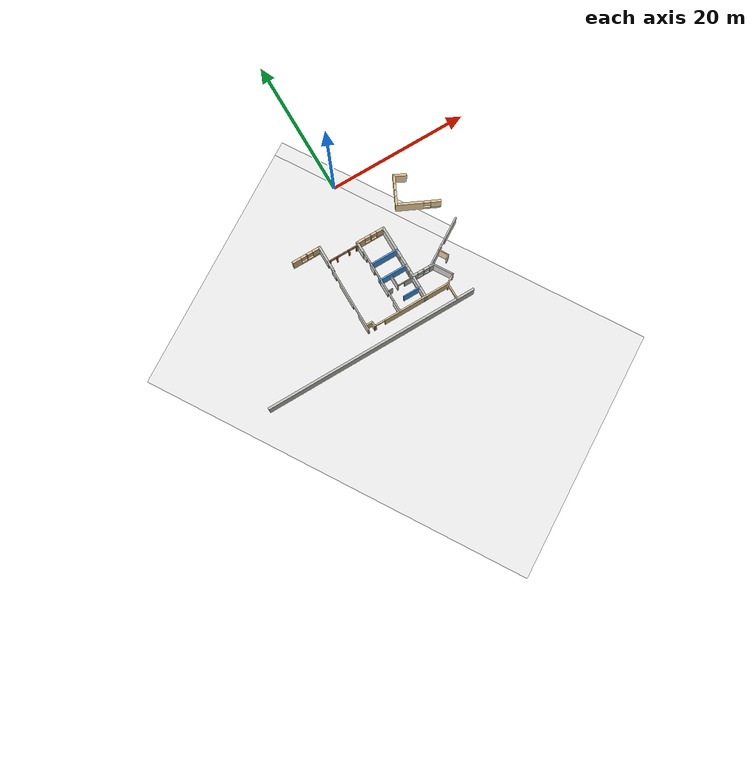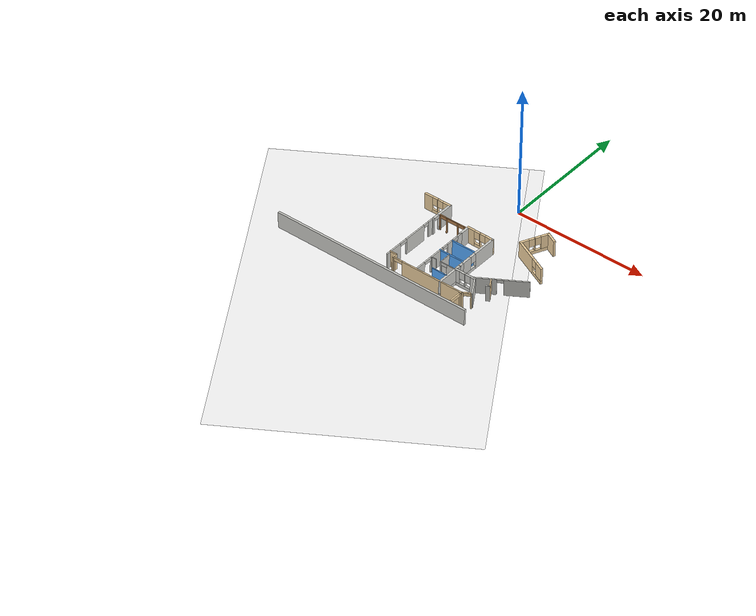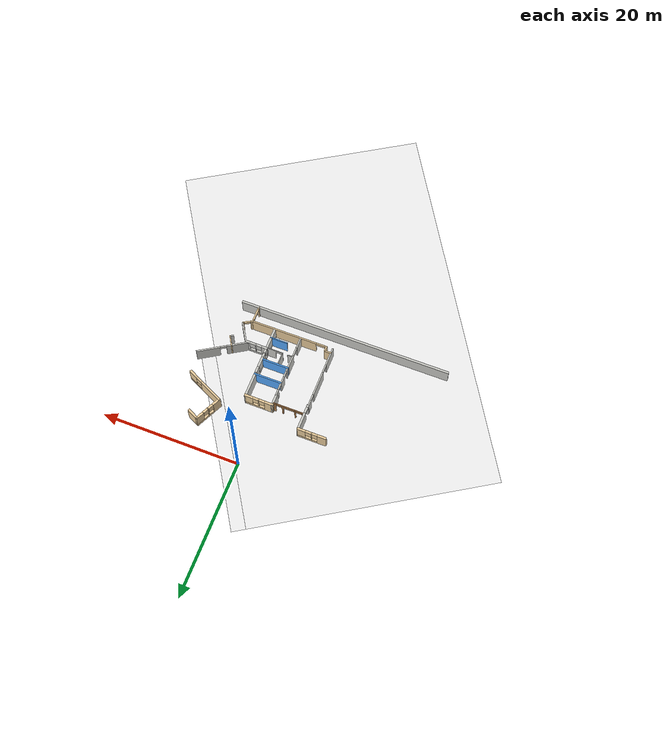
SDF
<sdf version="1.6">
 <model name="floor_with_ground">
  <pose>1.8499 0.23643 0 0 -0 0</pose>
  <link name="Wall_221">
   <pose>-9.9509 -7.06743 0 0 -0 0</pose>
   <visual name="Wall_221_Visual_0">
    <pose>-1.45475 0 1.25 0 -0 0</pose>
    <geometry><box><size>1.3005 0.32 2.5</size></box></geometry>
    <material>
     <script><uri>file://media/materials/scripts/gazebo.material</uri><name>Gazebo/Grey</name></script>
     <ambient>0.921569 0.807843 0.615686 1</ambient>
    </material>
   </visual>
   <collision name="Wall_221_Collision_0">
    <geometry><box><size>1.3005 0.32 2.5</size></box></geometry>
    <pose>-1.45475 0 1.25 0 -0 0</pose>
   </collision>
   <visual name="Wall_221_Visual_1">
    <pose>0.650249 0 0.25 0 -0 0</pose>
    <geometry><box><size>2.9095 0.32 0.5</size></box></geometry>
    <material>
     <script><uri>file://media/materials/scripts/gazebo.material</uri><name>Gazebo/Grey</name></script>
     <ambient>0.921569 0.807843 0.615686 1</ambient>
    </material>
   </visual>
   <collision name="Wall_221_Collision_1">
    <geometry><box><size>2.9095 0.32 0.5</size></box></geometry>
    <pose>0.650249 0 0.25 0 -0 0</pose>
   </collision>
   <visual name="Wall_221_Visual_2">
    <pose>0.048053 0 1.5 0 -0 0</pose>
    <geometry><box><size>0.105111 0.32 2</size></box></geometry>
    <material>
     <script><uri>file://media/materials/scripts/gazebo.material</uri><name>Gazebo/Grey</name></script>
     <ambient>0.921569 0.807843 0.615686 1</ambient>
    </material>
   </visual>
   <collision name="Wall_221_Collision_2">
    <geometry><box><size>0.105111 0.32 2</size></box></geometry>
    <pose>0.048053 0 1.5 0 -0 0</pose>
   </collision>
   <visual name="Wall_221_Visual_3">
    <pose>1.5028 0 1.5 0 -0 0</pose>
    <geometry><box><size>1.20439 0.32 2</size></box></geometry>
    <material>
     <script><uri>file://media/materials/scripts/gazebo.material</uri><name>Gazebo/Grey</name></script>
     <ambient>0.921569 0.807843 0.615686 1</ambient>
    </material>
   </visual>
   <collision name="Wall_221_Collision_3">
    <geometry><box><size>1.20439 0.32 2</size></box></geometry>
    <pose>1.5028 0 1.5 0 -0 0</pose>
   </collision>
   <visual name="Wall_221_Visual_4">
    <pose>-0.404503 0 1.9 0 -0 0</pose>
    <geometry><box><size>0.8 0.32 1.2</size></box></geometry>
    <material>
     <script><uri>file://media/materials/scripts/gazebo.material</uri><name>Gazebo/Grey</name></script>
     <ambient>0.921569 0.807843 0.615686 1</ambient>
    </material>
   </visual>
   <collision name="Wall_221_Collision_4">
    <geometry><box><size>0.8 0.32 1.2</size></box></geometry>
    <pose>-0.404503 0 1.9 0 -0 0</pose>
   </collision>
   <visual name="Wall_221_Visual_5">
    <pose>0.500608 0 1.9 0 -0 0</pose>
    <geometry><box><size>0.8 0.32 1.2</size></box></geometry>
    <material>
     <script><uri>file://media/materials/scripts/gazebo.material</uri><name>Gazebo/Grey</name></script>
     <ambient>0.921569 0.807843 0.615686 1</ambient>
    </material>
   </visual>
   <collision name="Wall_221_Collision_5">
    <geometry><box><size>0.8 0.32 1.2</size></box></geometry>
    <pose>0.500608 0 1.9 0 -0 0</pose>
   </collision>
  </link>
  <link name="Wall_233">
   <pose>-5.71156 -9.34954 0 0 -0 0</pose>
   <visual name="Wall_233_Visual_0">
    <pose>-2.14237 0 1.25 0 -0 0</pose>
    <geometry><box><size>0.465256 0.15 2.5</size></box></geometry>
    <material>
     <script><uri>file://media/materials/scripts/gazebo.material</uri><name>Gazebo/Wood</name></script>
     <ambient>1 1 1 1</ambient>
    </material>
   </visual>
   <collision name="Wall_233_Collision_0">
    <geometry><box><size>0.465256 0.15 2.5</size></box></geometry>
    <pose>-2.14237 0 1.25 0 -0 0</pose>
   </collision>
   <visual name="Wall_233_Visual_1">
    <pose>-0.914158 0 1.25 0 -0 0</pose>
    <geometry><box><size>0.191172 0.15 2.5</size></box></geometry>
    <material>
     <script><uri>file://media/materials/scripts/gazebo.material</uri><name>Gazebo/Wood</name></script>
     <ambient>1 1 1 1</ambient>
    </material>
   </visual>
   <collision name="Wall_233_Collision_1">
    <geometry><box><size>0.191172 0.15 2.5</size></box></geometry>
    <pose>-0.914158 0 1.25 0 -0 0</pose>
   </collision>
   <visual name="Wall_233_Visual_2">
    <pose>0.897669 0 1.25 0 -0 0</pose>
    <geometry><box><size>0.225333 0.15 2.5</size></box></geometry>
    <material>
     <script><uri>file://media/materials/scripts/gazebo.material</uri><name>Gazebo/Wood</name></script>
     <ambient>1 1 1 1</ambient>
    </material>
   </visual>
   <collision name="Wall_233_Collision_2">
    <geometry><box><size>0.225333 0.15 2.5</size></box></geometry>
    <pose>0.897669 0 1.25 0 -0 0</pose>
   </collision>
   <visual name="Wall_233_Visual_3">
    <pose>2.14267 0 1.25 0 -0 0</pose>
    <geometry><box><size>0.464664 0.15 2.5</size></box></geometry>
    <material>
     <script><uri>file://media/materials/scripts/gazebo.material</uri><name>Gazebo/Wood</name></script>
     <ambient>1 1 1 1</ambient>
    </material>
   </visual>
   <collision name="Wall_233_Collision_3">
    <geometry><box><size>0.464664 0.15 2.5</size></box></geometry>
    <pose>2.14267 0 1.25 0 -0 0</pose>
   </collision>
   <visual name="Wall_233_Visual_4">
    <pose>-1.45974 0 2.25 0 -0 0</pose>
    <geometry><box><size>0.9 0.15 0.5</size></box></geometry>
    <material>
     <script><uri>file://media/materials/scripts/gazebo.material</uri><name>Gazebo/Wood</name></script>
     <ambient>1 1 1 1</ambient>
    </material>
   </visual>
   <collision name="Wall_233_Collision_4">
    <geometry><box><size>0.9 0.15 0.5</size></box></geometry>
    <pose>-1.45974 0 2.25 0 -0 0</pose>
   </collision>
   <visual name="Wall_233_Visual_5">
    <pose>-0.016785 0 2.25 0 -0 0</pose>
    <geometry><box><size>1.60357 0.15 0.5</size></box></geometry>
    <material>
     <script><uri>file://media/materials/scripts/gazebo.material</uri><name>Gazebo/Wood</name></script>
     <ambient>1 1 1 1</ambient>
    </material>
   </visual>
   <collision name="Wall_233_Collision_5">
    <geometry><box><size>1.60357 0.15 0.5</size></box></geometry>
    <pose>-0.016785 0 2.25 0 -0 0</pose>
   </collision>
   <visual name="Wall_233_Visual_6">
    <pose>1.46034 0 2.25 0 -0 0</pose>
    <geometry><box><size>0.9 0.15 0.5</size></box></geometry>
    <material>
     <script><uri>file://media/materials/scripts/gazebo.material</uri><name>Gazebo/Wood</name></script>
     <ambient>1 1 1 1</ambient>
    </material>
   </visual>
   <collision name="Wall_233_Collision_6">
    <geometry><box><size>0.9 0.15 0.5</size></box></geometry>
    <pose>1.46034 0 2.25 0 -0 0</pose>
   </collision>
  </link>
  <link name="Wall_237">
   <pose>-1.5754 -19.8154 0 0 -0 0.001807</pose>
   <visual name="Wall_237_Visual_0">
    <pose>-5.47494 0 1.25 0 -0 0</pose>
    <geometry><box><size>0.319129 0.2 2.5</size></box></geometry>
    <material>
     <script><uri>file://media/materials/scripts/gazebo.material</uri><name>Gazebo/Grey</name></script>
     <ambient>0.921569 0.807843 0.615686 1</ambient>
    </material>
   </visual>
   <collision name="Wall_237_Collision_0">
    <geometry><box><size>0.319129 0.2 2.5</size></box></geometry>
    <pose>-5.47494 0 1.25 0 -0 0</pose>
   </collision>
   <visual name="Wall_237_Visual_1">
    <pose>0.810304 0 1.25 0 -0 0</pose>
    <geometry><box><size>9.64841 0.2 2.5</size></box></geometry>
    <material>
     <script><uri>file://media/materials/scripts/gazebo.material</uri><name>Gazebo/Grey</name></script>
     <ambient>0.921569 0.807843 0.615686 1</ambient>
    </material>
   </visual>
   <collision name="Wall_237_Collision_1">
    <geometry><box><size>9.64841 0.2 2.5</size></box></geometry>
    <pose>0.810304 0 1.25 0 -0 0</pose>
   </collision>
   <visual name="Wall_237_Visual_2">
    <pose>-4.66464 0 2.25 0 -0 0</pose>
    <geometry><box><size>1.30148 0.2 0.5</size></box></geometry>
    <material>
     <script><uri>file://media/materials/scripts/gazebo.material</uri><name>Gazebo/Grey</name></script>
     <ambient>0.921569 0.807843 0.615686 1</ambient>
    </material>
   </visual>
   <collision name="Wall_237_Collision_2">
    <geometry><box><size>1.30148 0.2 0.5</size></box></geometry>
    <pose>-4.66464 0 2.25 0 -0 0</pose>
   </collision>
  </link>
  <link name="Wall_242">
   <pose>-1.37522 -9.05787 0 0 0 -0.005654</pose>
   <visual name="Wall_242_Visual_0">
    <pose>-1.49229 0 1.25 0 -0 0</pose>
    <geometry><box><size>1.26743 0.32 2.5</size></box></geometry>
    <material>
     <script><uri>file://media/materials/scripts/gazebo.material</uri><name>Gazebo/Grey</name></script>
     <ambient>0.921569 0.807843 0.615686 1</ambient>
    </material>
   </visual>
   <collision name="Wall_242_Collision_0">
    <geometry><box><size>1.26743 0.32 2.5</size></box></geometry>
    <pose>-1.49229 0 1.25 0 -0 0</pose>
   </collision>
   <visual name="Wall_242_Visual_1">
    <pose>0.633717 0 0.25 0 -0 0</pose>
    <geometry><box><size>2.98457 0.32 0.5</size></box></geometry>
    <material>
     <script><uri>file://media/materials/scripts/gazebo.material</uri><name>Gazebo/Grey</name></script>
     <ambient>0.921569 0.807843 0.615686 1</ambient>
    </material>
   </visual>
   <collision name="Wall_242_Collision_1">
    <geometry><box><size>2.98457 0.32 0.5</size></box></geometry>
    <pose>0.633717 0 0.25 0 -0 0</pose>
   </collision>
   <visual name="Wall_242_Visual_2">
    <pose>0.003637 0 1.5 0 -0 0</pose>
    <geometry><box><size>0.124413 0.32 2</size></box></geometry>
    <material>
     <script><uri>file://media/materials/scripts/gazebo.material</uri><name>Gazebo/Grey</name></script>
     <ambient>0.921569 0.807843 0.615686 1</ambient>
    </material>
   </visual>
   <collision name="Wall_242_Collision_2">
    <geometry><box><size>0.124413 0.32 2</size></box></geometry>
    <pose>0.003637 0 1.5 0 -0 0</pose>
   </collision>
   <visual name="Wall_242_Visual_3">
    <pose>1.49592 0 1.5 0 -0 0</pose>
    <geometry><box><size>1.26016 0.32 2</size></box></geometry>
    <material>
     <script><uri>file://media/materials/scripts/gazebo.material</uri><name>Gazebo/Grey</name></script>
     <ambient>0.921569 0.807843 0.615686 1</ambient>
    </material>
   </visual>
   <collision name="Wall_242_Collision_3">
    <geometry><box><size>1.26016 0.32 2</size></box></geometry>
    <pose>1.49592 0 1.5 0 -0 0</pose>
   </collision>
   <visual name="Wall_242_Visual_4">
    <pose>-0.45857 0 1.9 0 -0 0</pose>
    <geometry><box><size>0.8 0.32 1.2</size></box></geometry>
    <material>
     <script><uri>file://media/materials/scripts/gazebo.material</uri><name>Gazebo/Grey</name></script>
     <ambient>0.921569 0.807843 0.615686 1</ambient>
    </material>
   </visual>
   <collision name="Wall_242_Collision_4">
    <geometry><box><size>0.8 0.32 1.2</size></box></geometry>
    <pose>-0.45857 0 1.9 0 -0 0</pose>
   </collision>
   <visual name="Wall_242_Visual_5">
    <pose>0.465844 0 1.9 0 -0 0</pose>
    <geometry><box><size>0.8 0.32 1.2</size></box></geometry>
    <material>
     <script><uri>file://media/materials/scripts/gazebo.material</uri><name>Gazebo/Grey</name></script>
     <ambient>0.921569 0.807843 0.615686 1</ambient>
    </material>
   </visual>
   <collision name="Wall_242_Collision_5">
    <geometry><box><size>0.8 0.32 1.2</size></box></geometry>
    <pose>0.465844 0 1.9 0 -0 0</pose>
   </collision>
  </link>
  <link name="Wall_243">
   <pose>0.58845 -14.4121 0 0 0 -1.57123</pose>
   <visual name="Wall_243_Visual_0">
    <pose>-3.60304 0 1.25 0 -0 0</pose>
    <geometry><box><size>3.80007 0.32 2.5</size></box></geometry>
    <material>
     <script><uri>file://media/materials/scripts/gazebo.material</uri><name>Gazebo/CeilingTiled</name></script>
     <ambient>0.921569 0.807843 0.615686 1</ambient>
    </material>
   </visual>
   <collision name="Wall_243_Collision_0">
    <geometry><box><size>3.80007 0.32 2.5</size></box></geometry>
    <pose>-3.60304 0 1.25 0 -0 0</pose>
   </collision>
   <visual name="Wall_243_Visual_1">
    <pose>1.90003 0 0.25 0 -0 0</pose>
    <geometry><box><size>7.20609 0.32 0.5</size></box></geometry>
    <material>
     <script><uri>file://media/materials/scripts/gazebo.material</uri><name>Gazebo/CeilingTiled</name></script>
     <ambient>0.921569 0.807843 0.615686 1</ambient>
    </material>
   </visual>
   <collision name="Wall_243_Collision_1">
    <geometry><box><size>7.20609 0.32 0.5</size></box></geometry>
    <pose>1.90003 0 0.25 0 -0 0</pose>
   </collision>
   <visual name="Wall_243_Visual_2">
    <pose>0.026227 0 1.5 0 -0 0</pose>
    <geometry><box><size>1.53665 0.32 2</size></box></geometry>
    <material>
     <script><uri>file://media/materials/scripts/gazebo.material</uri><name>Gazebo/CeilingTiled</name></script>
     <ambient>0.921569 0.807843 0.615686 1</ambient>
    </material>
   </visual>
   <collision name="Wall_243_Collision_2">
    <geometry><box><size>1.53665 0.32 2</size></box></geometry>
    <pose>0.026227 0 1.5 0 -0 0</pose>
   </collision>
   <visual name="Wall_243_Visual_3">
    <pose>1.44502 0 1.5 0 -0 0</pose>
    <geometry><box><size>0.100925 0.32 2</size></box></geometry>
    <material>
     <script><uri>file://media/materials/scripts/gazebo.material</uri><name>Gazebo/CeilingTiled</name></script>
     <ambient>0.921569 0.807843 0.615686 1</ambient>
    </material>
   </visual>
   <collision name="Wall_243_Collision_3">
    <geometry><box><size>0.100925 0.32 2</size></box></geometry>
    <pose>1.44502 0 1.5 0 -0 0</pose>
   </collision>
   <visual name="Wall_243_Visual_4">
    <pose>3.79928 0 1.5 0 -0 0</pose>
    <geometry><box><size>3.4076 0.32 2</size></box></geometry>
    <material>
     <script><uri>file://media/materials/scripts/gazebo.material</uri><name>Gazebo/CeilingTiled</name></script>
     <ambient>0.921569 0.807843 0.615686 1</ambient>
    </material>
   </visual>
   <collision name="Wall_243_Collision_4">
    <geometry><box><size>3.4076 0.32 2</size></box></geometry>
    <pose>3.79928 0 1.5 0 -0 0</pose>
   </collision>
   <visual name="Wall_243_Visual_5">
    <pose>-1.22255 0 1.9 0 -0 0</pose>
    <geometry><box><size>0.960909 0.32 1.2</size></box></geometry>
    <material>
     <script><uri>file://media/materials/scripts/gazebo.material</uri><name>Gazebo/CeilingTiled</name></script>
     <ambient>0.921569 0.807843 0.615686 1</ambient>
    </material>
   </visual>
   <collision name="Wall_243_Collision_5">
    <geometry><box><size>0.960909 0.32 1.2</size></box></geometry>
    <pose>-1.22255 0 1.9 0 -0 0</pose>
   </collision>
   <visual name="Wall_243_Visual_6">
    <pose>1.09455 0 1.9 0 -0 0</pose>
    <geometry><box><size>0.6 0.32 1.2</size></box></geometry>
    <material>
     <script><uri>file://media/materials/scripts/gazebo.material</uri><name>Gazebo/CeilingTiled</name></script>
     <ambient>0.921569 0.807843 0.615686 1</ambient>
    </material>
   </visual>
   <collision name="Wall_243_Collision_6">
    <geometry><box><size>0.6 0.32 1.2</size></box></geometry>
    <pose>1.09455 0 1.9 0 -0 0</pose>
   </collision>
   <visual name="Wall_243_Visual_7">
    <pose>1.79548 0 1.9 0 -0 0</pose>
    <geometry><box><size>0.6 0.32 1.2</size></box></geometry>
    <material>
     <script><uri>file://media/materials/scripts/gazebo.material</uri><name>Gazebo/CeilingTiled</name></script>
     <ambient>0.921569 0.807843 0.615686 1</ambient>
    </material>
   </visual>
   <collision name="Wall_243_Collision_7">
    <geometry><box><size>0.6 0.32 1.2</size></box></geometry>
    <pose>1.79548 0 1.9 0 -0 0</pose>
   </collision>
  </link>
  <link name="Wall_245">
   <pose>4.5296 -19.4789 0 0 -0 0.519807</pose>
   <visual name="Wall_245_Visual_0">
    <pose>-0.544743 0 1.25 0 -0 0</pose>
    <geometry><box><size>0.425159 0.2 2.5</size></box></geometry>
    <material>
     <script><uri>file://media/materials/scripts/gazebo.material</uri><name>Gazebo/Grey</name></script>
     <ambient>0.921569 0.807843 0.615686 1</ambient>
    </material>
   </visual>
   <collision name="Wall_245_Collision_0">
    <geometry><box><size>0.425159 0.2 2.5</size></box></geometry>
    <pose>-0.544743 0 1.25 0 -0 0</pose>
   </collision>
   <visual name="Wall_245_Visual_1">
    <pose>0.662579 0 1.25 0 -0 0</pose>
    <geometry><box><size>0.189486 0.2 2.5</size></box></geometry>
    <material>
     <script><uri>file://media/materials/scripts/gazebo.material</uri><name>Gazebo/Grey</name></script>
     <ambient>0.921569 0.807843 0.615686 1</ambient>
    </material>
   </visual>
   <collision name="Wall_245_Collision_1">
    <geometry><box><size>0.189486 0.2 2.5</size></box></geometry>
    <pose>0.662579 0 1.25 0 -0 0</pose>
   </collision>
   <visual name="Wall_245_Visual_2">
    <pose>0.117836 0 2.25 0 -0 0</pose>
    <geometry><box><size>0.9 0.2 0.5</size></box></geometry>
    <material>
     <script><uri>file://media/materials/scripts/gazebo.material</uri><name>Gazebo/Grey</name></script>
     <ambient>0.921569 0.807843 0.615686 1</ambient>
    </material>
   </visual>
   <collision name="Wall_245_Collision_2">
    <geometry><box><size>0.9 0.2 0.5</size></box></geometry>
    <pose>0.117836 0 2.25 0 -0 0</pose>
   </collision>
  </link>
  <link name="Wall_247">
   <pose>2.05987 -16.634 0 0 -0 3.13729</pose>
   <visual name="Wall_247_Visual_0">
    <pose>-1.2965 0 1.25 0 -0 0</pose>
    <geometry><box><size>0.63484 0.32 2.5</size></box></geometry>
    <material>
     <script><uri>file://media/materials/scripts/gazebo.material</uri><name>Gazebo/CeilingTiled</name></script>
     <ambient>0.921569 0.807843 0.615686 1</ambient>
    </material>
   </visual>
   <collision name="Wall_247_Collision_0">
    <geometry><box><size>0.63484 0.32 2.5</size></box></geometry>
    <pose>-1.2965 0 1.25 0 -0 0</pose>
   </collision>
   <visual name="Wall_247_Visual_1">
    <pose>0.31742 0 0.25 0 -0 0</pose>
    <geometry><box><size>2.593 0.32 0.5</size></box></geometry>
    <material>
     <script><uri>file://media/materials/scripts/gazebo.material</uri><name>Gazebo/CeilingTiled</name></script>
     <ambient>0.921569 0.807843 0.615686 1</ambient>
    </material>
   </visual>
   <collision name="Wall_247_Collision_1">
    <geometry><box><size>2.593 0.32 0.5</size></box></geometry>
    <pose>0.31742 0 0.25 0 -0 0</pose>
   </collision>
   <visual name="Wall_247_Visual_2">
    <pose>-0.115351 0 1.5 0 -0 0</pose>
    <geometry><box><size>0.127464 0.32 2</size></box></geometry>
    <material>
     <script><uri>file://media/materials/scripts/gazebo.material</uri><name>Gazebo/CeilingTiled</name></script>
     <ambient>0.921569 0.807843 0.615686 1</ambient>
    </material>
   </visual>
   <collision name="Wall_247_Collision_2">
    <geometry><box><size>0.127464 0.32 2</size></box></geometry>
    <pose>-0.115351 0 1.5 0 -0 0</pose>
   </collision>
   <visual name="Wall_247_Visual_3">
    <pose>1.18115 0 1.5 0 -0 0</pose>
    <geometry><box><size>0.865542 0.32 2</size></box></geometry>
    <material>
     <script><uri>file://media/materials/scripts/gazebo.material</uri><name>Gazebo/CeilingTiled</name></script>
     <ambient>0.921569 0.807843 0.615686 1</ambient>
    </material>
   </visual>
   <collision name="Wall_247_Collision_3">
    <geometry><box><size>0.865542 0.32 2</size></box></geometry>
    <pose>1.18115 0 1.5 0 -0 0</pose>
   </collision>
   <visual name="Wall_247_Visual_4">
    <pose>-0.579083 0 1.9 0 -0 0</pose>
    <geometry><box><size>0.8 0.32 1.2</size></box></geometry>
    <material>
     <script><uri>file://media/materials/scripts/gazebo.material</uri><name>Gazebo/CeilingTiled</name></script>
     <ambient>0.921569 0.807843 0.615686 1</ambient>
    </material>
   </visual>
   <collision name="Wall_247_Collision_4">
    <geometry><box><size>0.8 0.32 1.2</size></box></geometry>
    <pose>-0.579083 0 1.9 0 -0 0</pose>
   </collision>
   <visual name="Wall_247_Visual_5">
    <pose>0.348381 0 1.9 0 -0 0</pose>
    <geometry><box><size>0.8 0.32 1.2</size></box></geometry>
    <material>
     <script><uri>file://media/materials/scripts/gazebo.material</uri><name>Gazebo/CeilingTiled</name></script>
     <ambient>0.921569 0.807843 0.615686 1</ambient>
    </material>
   </visual>
   <collision name="Wall_247_Collision_5">
    <geometry><box><size>0.8 0.32 1.2</size></box></geometry>
    <pose>0.348381 0 1.9 0 -0 0</pose>
   </collision>
  </link>
  <link name="Wall_250">
   <collision name="Wall_250_Collision">
    <geometry><box><size>3.18067 0.2 2.5</size></box></geometry>
    <pose>0 0 1.25 0 -0 0</pose>
   </collision>
   <visual name="Wall_250_Visual">
    <pose>0 0 1.25 0 -0 0</pose>
    <geometry><box><size>3.18067 0.2 2.5</size></box></geometry>
    <material>
     <script><uri>file://media/materials/scripts/gazebo.material</uri><name>Gazebo/CeilingTiled</name></script>
     <ambient>0.921569 0.807843 0.615686 1</ambient>
    </material>
   </visual>
   <pose>4.39594 -17.7988 0 0 -0 2.1233</pose>
  </link>
  <link name="Wall_253">
   <collision name="Wall_253_Collision">
    <geometry><box><size>4.05026 0.2 2.5</size></box></geometry>
    <pose>0 0 1.25 0 -0 0</pose>
   </collision>
   <visual name="Wall_253_Visual">
    <pose>0 0 1.25 0 -0 0</pose>
    <geometry><box><size>4.05026 0.2 2.5</size></box></geometry>
    <material>
     <script><uri>file://media/materials/scripts/gazebo.material</uri><name>Gazebo/Grey</name></script>
     <ambient>0.333333 0.666667 1 1</ambient>
    </material>
   </visual>
   <pose>-1.3729 -14.9244 0 0 -0 3.14159</pose>
  </link>
  <link name="Wall_255">
   <collision name="Wall_255_Collision">
    <geometry><box><size>4.04992 0.2 2.5</size></box></geometry>
    <pose>0 0 1.25 0 -0 0</pose>
   </collision>
   <visual name="Wall_255_Visual">
    <pose>0 0 1.25 0 -0 0</pose>
    <geometry><box><size>4.04992 0.2 2.5</size></box></geometry>
    <material>
     <script><uri>file://media/materials/scripts/gazebo.material</uri><name>Gazebo/Grey</name></script>
     <ambient>0.333333 0.666667 1 1</ambient>
    </material>
   </visual>
   <pose>-1.3129 -12.4904 0 0 -0 3.14159</pose>
  </link>
  <link name="Wall_259">
   <collision name="Wall_259_Collision">
    <geometry><box><size>1.60693 0.15 2.5</size></box></geometry>
    <pose>0 0 1.25 0 -0 0</pose>
   </collision>
   <visual name="Wall_259_Visual">
    <pose>0 0 1.25 0 -0 0</pose>
    <geometry><box><size>1.60693 0.15 2.5</size></box></geometry>
    <material>
     <script><uri>file://media/materials/scripts/gazebo.material</uri><name>Gazebo/Grey</name></script>
     <ambient>0.921569 0.807843 0.615686 1</ambient>
    </material>
   </visual>
   <pose>5.66333 -15.9229 0 0 0 -1.03514</pose>
  </link>
  <link name="Wall_275">
   <pose>-0.589967 -16.7403 0 0 -0 3.14061</pose>
   <visual name="Wall_275_Visual_0">
    <pose>-0.522536 0 1.25 0 -0 0</pose>
    <geometry><box><size>1.42307 0.1 2.5</size></box></geometry>
    <material>
     <script><uri>file://media/materials/scripts/gazebo.material</uri><name>Gazebo/CeilingTiled</name></script>
     <ambient>0.333333 0.666667 1 1</ambient>
    </material>
   </visual>
   <collision name="Wall_275_Collision_0">
    <geometry><box><size>1.42307 0.1 2.5</size></box></geometry>
    <pose>-0.522536 0 1.25 0 -0 0</pose>
   </collision>
   <visual name="Wall_275_Visual_1">
    <pose>1.16153 0 1.25 0 -0 0</pose>
    <geometry><box><size>0.145072 0.1 2.5</size></box></geometry>
    <material>
     <script><uri>file://media/materials/scripts/gazebo.material</uri><name>Gazebo/CeilingTiled</name></script>
     <ambient>0.333333 0.666667 1 1</ambient>
    </material>
   </visual>
   <collision name="Wall_275_Collision_1">
    <geometry><box><size>0.145072 0.1 2.5</size></box></geometry>
    <pose>1.16153 0 1.25 0 -0 0</pose>
   </collision>
   <visual name="Wall_275_Visual_2">
    <pose>0.638998 0 2.25 0 -0 0</pose>
    <geometry><box><size>0.9 0.1 0.5</size></box></geometry>
    <material>
     <script><uri>file://media/materials/scripts/gazebo.material</uri><name>Gazebo/CeilingTiled</name></script>
     <ambient>0.333333 0.666667 1 1</ambient>
    </material>
   </visual>
   <collision name="Wall_275_Collision_2">
    <geometry><box><size>0.9 0.1 0.5</size></box></geometry>
    <pose>0.638998 0 2.25 0 -0 0</pose>
   </collision>
  </link>
  <link name="Wall_282">
   <pose>6.42021 -14.6366 0 0 -0 0.557938</pose>
   <visual name="Wall_282_Visual_0">
    <pose>-2.13123 0 1.25 0 -0 0</pose>
    <geometry><box><size>3.09566 0.2 2.5</size></box></geometry>
    <material>
     <script><uri>file://media/materials/scripts/gazebo.material</uri><name>Gazebo/CeilingTiled</name></script>
     <ambient>0.921569 0.807843 0.615686 1</ambient>
    </material>
   </visual>
   <collision name="Wall_282_Collision_0">
    <geometry><box><size>3.09566 0.2 2.5</size></box></geometry>
    <pose>-2.13123 0 1.25 0 -0 0</pose>
   </collision>
   <visual name="Wall_282_Visual_1">
    <pose>1.99783 0 1.25 0 -0 0</pose>
    <geometry><box><size>3.36246 0.2 2.5</size></box></geometry>
    <material>
     <script><uri>file://media/materials/scripts/gazebo.material</uri><name>Gazebo/CeilingTiled</name></script>
     <ambient>0.921569 0.807843 0.615686 1</ambient>
    </material>
   </visual>
   <collision name="Wall_282_Collision_1">
    <geometry><box><size>3.36246 0.2 2.5</size></box></geometry>
    <pose>1.99783 0 1.25 0 -0 0</pose>
   </collision>
   <visual name="Wall_282_Visual_2">
    <pose>-0.133402 0 2.25 0 -0 0</pose>
    <geometry><box><size>0.9 0.2 0.5</size></box></geometry>
    <material>
     <script><uri>file://media/materials/scripts/gazebo.material</uri><name>Gazebo/CeilingTiled</name></script>
     <ambient>0.921569 0.807843 0.615686 1</ambient>
    </material>
   </visual>
   <collision name="Wall_282_Collision_2">
    <geometry><box><size>0.9 0.2 0.5</size></box></geometry>
    <pose>-0.133402 0 2.25 0 -0 0</pose>
   </collision>
  </link>
  <link name="Wall_287">
   <collision name="Wall_287_Collision">
    <geometry><box><size>1.866 0.1 2.5</size></box></geometry>
    <pose>0 0 1.25 0 -0 0</pose>
   </collision>
   <visual name="Wall_287_Visual">
    <pose>0 0 1.25 0 -0 0</pose>
    <geometry><box><size>1.866 0.1 2.5</size></box></geometry>
    <material>
     <script><uri>file://media/materials/scripts/gazebo.material</uri><name>Gazebo/CeilingTiled</name></script>
     <ambient>0.333333 0.666667 1 1</ambient>
    </material>
   </visual>
   <pose>-1.7709 -15.8553 0 0 0 -1.5708</pose>
  </link>
  <link name="Wall_294">
   <collision name="Wall_294_Collision">
    <geometry><box><size>2.5 0.15 2.5</size></box></geometry>
    <pose>0 0 1.25 0 -0 0</pose>
   </collision>
   <visual name="Wall_294_Visual">
    <pose>0 0 1.25 0 -0 0</pose>
    <geometry><box><size>2.5 0.15 2.5</size></box></geometry>
    <material>
     <script><uri>file://media/materials/scripts/gazebo.material</uri><name>Gazebo/Grey</name></script>
     <ambient>0.333333 0.666667 1 1</ambient>
    </material>
   </visual>
   <pose>-0.59323 -18.3782 0 0 -0 3.14159</pose>
  </link>
  <link name="Wall_300">
   <pose>6.34383 -8.41913 0 0 0 -0.44343</pose>
   <visual name="Wall_300_Visual_0">
    <pose>-1.17582 0 1.25 0 -0 0</pose>
    <geometry><box><size>3.74002 0.32 2.5</size></box></geometry>
    <material>
     <script><uri>file://media/materials/scripts/gazebo.material</uri><name>Gazebo/Grey</name></script>
     <ambient>0.921569 0.807843 0.615686 1</ambient>
    </material>
   </visual>
   <collision name="Wall_300_Collision_0">
    <geometry><box><size>3.74002 0.32 2.5</size></box></geometry>
    <pose>-1.17582 0 1.25 0 -0 0</pose>
   </collision>
   <visual name="Wall_300_Visual_1">
    <pose>1.87001 0 0.25 0 -0 0</pose>
    <geometry><box><size>2.35163 0.32 0.5</size></box></geometry>
    <material>
     <script><uri>file://media/materials/scripts/gazebo.material</uri><name>Gazebo/Grey</name></script>
     <ambient>0.921569 0.807843 0.615686 1</ambient>
    </material>
   </visual>
   <collision name="Wall_300_Collision_1">
    <geometry><box><size>2.35163 0.32 0.5</size></box></geometry>
    <pose>1.87001 0 0.25 0 -0 0</pose>
   </collision>
   <visual name="Wall_300_Visual_2">
    <pose>2.35197 0 1.5 0 -0 0</pose>
    <geometry><box><size>1.38772 0.32 2</size></box></geometry>
    <material>
     <script><uri>file://media/materials/scripts/gazebo.material</uri><name>Gazebo/Grey</name></script>
     <ambient>0.921569 0.807843 0.615686 1</ambient>
    </material>
   </visual>
   <collision name="Wall_300_Collision_2">
    <geometry><box><size>1.38772 0.32 2</size></box></geometry>
    <pose>2.35197 0 1.5 0 -0 0</pose>
   </collision>
   <visual name="Wall_300_Visual_3">
    <pose>1.17615 0 1.9 0 -0 0</pose>
    <geometry><box><size>0.963908 0.32 1.2</size></box></geometry>
    <material>
     <script><uri>file://media/materials/scripts/gazebo.material</uri><name>Gazebo/Grey</name></script>
     <ambient>0.921569 0.807843 0.615686 1</ambient>
    </material>
   </visual>
   <collision name="Wall_300_Collision_3">
    <geometry><box><size>0.963908 0.32 1.2</size></box></geometry>
    <pose>1.17615 0 1.9 0 -0 0</pose>
   </collision>
  </link>
  <link name="Wall_304">
   <collision name="Wall_304_Collision">
    <geometry><box><size>1.87855 0.32 2.5</size></box></geometry>
    <pose>0 0 1.25 0 -0 0</pose>
   </collision>
   <visual name="Wall_304_Visual">
    <pose>0 0 1.25 0 -0 0</pose>
    <geometry><box><size>1.87855 0.32 2.5</size></box></geometry>
    <material>
     <script><uri>file://media/materials/scripts/gazebo.material</uri><name>Gazebo/CeilingTiled</name></script>
     <ambient>0.921569 0.807843 0.615686 1</ambient>
    </material>
   </visual>
   <pose>-3.34306 -9.82602 0 0 0 -1.57319</pose>
  </link>
  <link name="Wall_310">
   <pose>-3.2849 -15.1714 0 0 0 -1.5708</pose>
   <visual name="Wall_310_Visual_0">
    <pose>-4.19644 0 1.25 0 -0 0</pose>
    <geometry><box><size>0.907129 0.2 2.5</size></box></geometry>
    <material>
     <script><uri>file://media/materials/scripts/gazebo.material</uri><name>Gazebo/CeilingTiled</name></script>
     <ambient>0.921569 0.807843 0.615686 1</ambient>
    </material>
   </visual>
   <collision name="Wall_310_Collision_0">
    <geometry><box><size>0.907129 0.2 2.5</size></box></geometry>
    <pose>-4.19644 0 1.25 0 -0 0</pose>
   </collision>
   <visual name="Wall_310_Visual_1">
    <pose>-2.26628 0 1.25 0 -0 0</pose>
    <geometry><box><size>1.15318 0.2 2.5</size></box></geometry>
    <material>
     <script><uri>file://media/materials/scripts/gazebo.material</uri><name>Gazebo/CeilingTiled</name></script>
     <ambient>0.921569 0.807843 0.615686 1</ambient>
    </material>
   </visual>
   <collision name="Wall_310_Collision_1">
    <geometry><box><size>1.15318 0.2 2.5</size></box></geometry>
    <pose>-2.26628 0 1.25 0 -0 0</pose>
   </collision>
   <visual name="Wall_310_Visual_2">
    <pose>0.466512 0 1.25 0 -0 0</pose>
    <geometry><box><size>2.51241 0.2 2.5</size></box></geometry>
    <material>
     <script><uri>file://media/materials/scripts/gazebo.material</uri><name>Gazebo/CeilingTiled</name></script>
     <ambient>0.921569 0.807843 0.615686 1</ambient>
    </material>
   </visual>
   <collision name="Wall_310_Collision_2">
    <geometry><box><size>2.51241 0.2 2.5</size></box></geometry>
    <pose>0.466512 0 1.25 0 -0 0</pose>
   </collision>
   <visual name="Wall_310_Visual_3">
    <pose>3.83705 0 1.25 0 -0 0</pose>
    <geometry><box><size>1.62589 0.2 2.5</size></box></geometry>
    <material>
     <script><uri>file://media/materials/scripts/gazebo.material</uri><name>Gazebo/CeilingTiled</name></script>
     <ambient>0.921569 0.807843 0.615686 1</ambient>
    </material>
   </visual>
   <collision name="Wall_310_Collision_3">
    <geometry><box><size>1.62589 0.2 2.5</size></box></geometry>
    <pose>3.83705 0 1.25 0 -0 0</pose>
   </collision>
   <visual name="Wall_310_Visual_4">
    <pose>-3.29287 0 2.25 0 -0 0</pose>
    <geometry><box><size>0.9 0.2 0.5</size></box></geometry>
    <material>
     <script><uri>file://media/materials/scripts/gazebo.material</uri><name>Gazebo/CeilingTiled</name></script>
     <ambient>0.921569 0.807843 0.615686 1</ambient>
    </material>
   </visual>
   <collision name="Wall_310_Collision_4">
    <geometry><box><size>0.9 0.2 0.5</size></box></geometry>
    <pose>-3.29287 0 2.25 0 -0 0</pose>
   </collision>
   <visual name="Wall_310_Visual_5">
    <pose>-1.23969 0 2.25 0 -0 0</pose>
    <geometry><box><size>0.9 0.2 0.5</size></box></geometry>
    <material>
     <script><uri>file://media/materials/scripts/gazebo.material</uri><name>Gazebo/CeilingTiled</name></script>
     <ambient>0.921569 0.807843 0.615686 1</ambient>
    </material>
   </visual>
   <collision name="Wall_310_Collision_5">
    <geometry><box><size>0.9 0.2 0.5</size></box></geometry>
    <pose>-1.23969 0 2.25 0 -0 0</pose>
   </collision>
   <visual name="Wall_310_Visual_6">
    <pose>2.37341 0 2.25 0 -0 0</pose>
    <geometry><box><size>1.3014 0.2 0.5</size></box></geometry>
    <material>
     <script><uri>file://media/materials/scripts/gazebo.material</uri><name>Gazebo/CeilingTiled</name></script>
     <ambient>0.921569 0.807843 0.615686 1</ambient>
    </material>
   </visual>
   <collision name="Wall_310_Collision_6">
    <geometry><box><size>1.3014 0.2 0.5</size></box></geometry>
    <pose>2.37341 0 2.25 0 -0 0</pose>
   </collision>
  </link>
  <link name="Wall_313">
   <pose>-7.94641 -8.84513 0 0 0 -1.57453</pose>
   <visual name="Wall_313_Visual_0">
    <pose>-0.63219 0 1.25 0 -0 0</pose>
    <geometry><box><size>2.59994 0.32 2.5</size></box></geometry>
    <material>
     <script><uri>file://media/materials/scripts/gazebo.material</uri><name>Gazebo/CeilingTiled</name></script>
     <ambient>0.921569 0.807843 0.615686 1</ambient>
    </material>
   </visual>
   <collision name="Wall_313_Collision_0">
    <geometry><box><size>2.59994 0.32 2.5</size></box></geometry>
    <pose>-0.63219 0 1.25 0 -0 0</pose>
   </collision>
   <visual name="Wall_313_Visual_1">
    <pose>1.74997 0 1.25 0 -0 0</pose>
    <geometry><box><size>0.364381 0.32 2.5</size></box></geometry>
    <material>
     <script><uri>file://media/materials/scripts/gazebo.material</uri><name>Gazebo/CeilingTiled</name></script>
     <ambient>0.921569 0.807843 0.615686 1</ambient>
    </material>
   </visual>
   <collision name="Wall_313_Collision_1">
    <geometry><box><size>0.364381 0.32 2.5</size></box></geometry>
    <pose>1.74997 0 1.25 0 -0 0</pose>
   </collision>
   <visual name="Wall_313_Visual_2">
    <pose>1.11778 0 2.25 0 -0 0</pose>
    <geometry><box><size>0.9 0.32 0.5</size></box></geometry>
    <material>
     <script><uri>file://media/materials/scripts/gazebo.material</uri><name>Gazebo/CeilingTiled</name></script>
     <ambient>0.921569 0.807843 0.615686 1</ambient>
    </material>
   </visual>
   <collision name="Wall_313_Collision_2">
    <geometry><box><size>0.9 0.32 0.5</size></box></geometry>
    <pose>1.11778 0 2.25 0 -0 0</pose>
   </collision>
  </link>
  <link name="Wall_315">
   <pose>-8.0259 -15.2549 0 0 0 -1.573</pose>
   <visual name="Wall_315_Visual_0">
    <pose>-4.18228 0 1.25 0 -0 0</pose>
    <geometry><box><size>0.906706 0.2 2.5</size></box></geometry>
    <material>
     <script><uri>file://media/materials/scripts/gazebo.material</uri><name>Gazebo/CeilingTiled</name></script>
     <ambient>0.921569 0.807843 0.615686 1</ambient>
    </material>
   </visual>
   <collision name="Wall_315_Collision_0">
    <geometry><box><size>0.906706 0.2 2.5</size></box></geometry>
    <pose>-4.18228 0 1.25 0 -0 0</pose>
   </collision>
   <visual name="Wall_315_Visual_1">
    <pose>-1.02848 0 1.25 0 -0 0</pose>
    <geometry><box><size>3.60091 0.2 2.5</size></box></geometry>
    <material>
     <script><uri>file://media/materials/scripts/gazebo.material</uri><name>Gazebo/CeilingTiled</name></script>
     <ambient>0.921569 0.807843 0.615686 1</ambient>
    </material>
   </visual>
   <collision name="Wall_315_Collision_1">
    <geometry><box><size>3.60091 0.2 2.5</size></box></geometry>
    <pose>-1.02848 0 1.25 0 -0 0</pose>
   </collision>
   <visual name="Wall_315_Visual_2">
    <pose>3.31981 0 1.25 0 -0 0</pose>
    <geometry><box><size>2.63165 0.2 2.5</size></box></geometry>
    <material>
     <script><uri>file://media/materials/scripts/gazebo.material</uri><name>Gazebo/CeilingTiled</name></script>
     <ambient>0.921569 0.807843 0.615686 1</ambient>
    </material>
   </visual>
   <collision name="Wall_315_Collision_2">
    <geometry><box><size>2.63165 0.2 2.5</size></box></geometry>
    <pose>3.31981 0 1.25 0 -0 0</pose>
   </collision>
   <visual name="Wall_315_Visual_3">
    <pose>-3.27893 0 2.25 0 -0 0</pose>
    <geometry><box><size>0.9 0.2 0.5</size></box></geometry>
    <material>
     <script><uri>file://media/materials/scripts/gazebo.material</uri><name>Gazebo/CeilingTiled</name></script>
     <ambient>0.921569 0.807843 0.615686 1</ambient>
    </material>
   </visual>
   <collision name="Wall_315_Collision_3">
    <geometry><box><size>0.9 0.2 0.5</size></box></geometry>
    <pose>-3.27893 0 2.25 0 -0 0</pose>
   </collision>
   <visual name="Wall_315_Visual_4">
    <pose>1.38798 0 2.25 0 -0 0</pose>
    <geometry><box><size>1.232 0.2 0.5</size></box></geometry>
    <material>
     <script><uri>file://media/materials/scripts/gazebo.material</uri><name>Gazebo/CeilingTiled</name></script>
     <ambient>0.921569 0.807843 0.615686 1</ambient>
    </material>
   </visual>
   <collision name="Wall_315_Collision_4">
    <geometry><box><size>1.232 0.2 0.5</size></box></geometry>
    <pose>1.38798 0 2.25 0 -0 0</pose>
   </collision>
  </link>
  <link name="Wall_329">
   <collision name="Wall_329_Collision">
    <geometry><box><size>1.86923 0.32 2.5</size></box></geometry>
    <pose>0 0 1.25 0 -0 0</pose>
   </collision>
   <visual name="Wall_329_Visual">
    <pose>0 0 1.25 0 -0 0</pose>
    <geometry><box><size>1.86923 0.32 2.5</size></box></geometry>
    <material>
     <script><uri>file://media/materials/scripts/gazebo.material</uri><name>Gazebo/Grey</name></script>
     <ambient>0.921569 0.807843 0.615686 1</ambient>
    </material>
   </visual>
   <pose>6.18413 -3.89445 0 0 0 -0.460193</pose>
  </link>
  <link name="Wall_360">
   <collision name="Wall_360_Collision">
    <geometry><box><size>0.835064 0.2 2.5</size></box></geometry>
    <pose>0 0 1.25 0 -0 0</pose>
   </collision>
   <visual name="Wall_360_Visual">
    <pose>0 0 1.25 0 -0 0</pose>
    <geometry><box><size>0.835064 0.2 2.5</size></box></geometry>
    <material>
     <script><uri>file://media/materials/scripts/gazebo.material</uri><name>Gazebo/Grey</name></script>
     <ambient>0.921569 0.807843 0.615686 1</ambient>
    </material>
   </visual>
   <pose>-7.1099 -19.5079 0 0 -0 1.5708</pose>
  </link>
  <link name="Wall_362">
   <collision name="Wall_362_Collision">
    <geometry><box><size>1.11456 0.2 2.5</size></box></geometry>
    <pose>0 0 1.25 0 -0 0</pose>
   </collision>
   <visual name="Wall_362_Visual">
    <pose>0 0 1.25 0 -0 0</pose>
    <geometry><box><size>1.11456 0.2 2.5</size></box></geometry>
    <material>
     <script><uri>file://media/materials/scripts/gazebo.material</uri><name>Gazebo/Grey</name></script>
     <ambient>0.921569 0.807843 0.615686 1</ambient>
    </material>
   </visual>
   <pose>-7.5744 -19.1754 0 0 -0 0</pose>
  </link>
  <link name="Wall_369">
   <collision name="Wall_369_Collision">
    <geometry><box><size>0.806357 0.1 2.5</size></box></geometry>
    <pose>0 0 1.25 0 -0 0</pose>
   </collision>
   <visual name="Wall_369_Visual">
    <pose>0 0 1.25 0 -0 0</pose>
    <geometry><box><size>0.806357 0.1 2.5</size></box></geometry>
    <material>
     <script><uri>file://media/materials/scripts/gazebo.material</uri><name>Gazebo/CeilingTiled</name></script>
     <ambient>0.333333 0.666667 1 1</ambient>
    </material>
   </visual>
   <pose>-2.9319 -16.7274 0 0 -0 0</pose>
  </link>
  <link name="Wall_372">
   <collision name="Wall_372_Collision">
    <geometry><box><size>30.7798 0.32 2.5</size></box></geometry>
    <pose>0 0 1.25 0 -0 0</pose>
   </collision>
   <visual name="Wall_372_Visual">
    <pose>0 0 1.25 0 -0 0</pose>
    <geometry><box><size>30.7798 0.32 2.5</size></box></geometry>
    <material>
     <script><uri>file://media/materials/scripts/gazebo.material</uri><name>Gazebo/CeilingTiled</name></script>
     <ambient>0.921569 0.807843 0.615686 1</ambient>
    </material>
   </visual>
   <pose>-8.89606 -22.1912 0 0 -0 0.00134</pose>
  </link>
  <link name="Wall_375">
   <pose>3.9491 -20.9804 0 0 0 -1.5708</pose>
   <visual name="Wall_375_Visual_0">
    <pose>-1.08223 0 1.25 0 -0 0</pose>
    <geometry><box><size>0.385065 0.2 2.5</size></box></geometry>
    <material>
     <script><uri>file://media/materials/scripts/gazebo.material</uri><name>Gazebo/Grey</name></script>
     <ambient>0.921569 0.807843 0.615686 1</ambient>
    </material>
   </visual>
   <collision name="Wall_375_Collision_0">
    <geometry><box><size>0.385065 0.2 2.5</size></box></geometry>
    <pose>-1.08223 0 1.25 0 -0 0</pose>
   </collision>
   <visual name="Wall_375_Visual_1">
    <pose>1.07045 0 1.25 0 -0 0</pose>
    <geometry><box><size>0.408632 0.2 2.5</size></box></geometry>
    <material>
     <script><uri>file://media/materials/scripts/gazebo.material</uri><name>Gazebo/Grey</name></script>
     <ambient>0.921569 0.807843 0.615686 1</ambient>
    </material>
   </visual>
   <collision name="Wall_375_Collision_1">
    <geometry><box><size>0.408632 0.2 2.5</size></box></geometry>
    <pose>1.07045 0 1.25 0 -0 0</pose>
   </collision>
   <visual name="Wall_375_Visual_2">
    <pose>-0.011784 0 2.25 0 -0 0</pose>
    <geometry><box><size>1.75583 0.2 0.5</size></box></geometry>
    <material>
     <script><uri>file://media/materials/scripts/gazebo.material</uri><name>Gazebo/Grey</name></script>
     <ambient>0.921569 0.807843 0.615686 1</ambient>
    </material>
   </visual>
   <collision name="Wall_375_Collision_2">
    <geometry><box><size>1.75583 0.2 0.5</size></box></geometry>
    <pose>-0.011784 0 2.25 0 -0 0</pose>
   </collision>
  </link>
  <link name="Wall_382">
   <collision name="Wall_382_Collision">
    <geometry><box><size>0.580465 0.15 2.5</size></box></geometry>
    <pose>0 0 1.25 0 -0 0</pose>
   </collision>
   <visual name="Wall_382_Visual">
    <pose>0 0 1.25 0 -0 0</pose>
    <geometry><box><size>0.580465 0.15 2.5</size></box></geometry>
    <material>
     <script><uri>file://media/materials/scripts/gazebo.material</uri><name>Gazebo/CeilingTiled</name></script>
     <ambient>0.921569 0.807843 0.615686 1</ambient>
    </material>
   </visual>
   <pose>5.84015 -16.6793 0 0 0 -2.60516</pose>
  </link>
  <link name="Wall_63">
   <pose>4.61221 -5.354 0 0 -0 1.11977</pose>
   <visual name="Wall_63_Visual_0">
    <pose>-1.50834 0 1.25 0 -0 0</pose>
    <geometry><box><size>1.31861 0.32 2.5</size></box></geometry>
    <material>
     <script><uri>file://media/materials/scripts/gazebo.material</uri><name>Gazebo/Grey</name></script>
     <ambient>0.921569 0.807843 0.615686 1</ambient>
    </material>
   </visual>
   <collision name="Wall_63_Collision_0">
    <geometry><box><size>1.31861 0.32 2.5</size></box></geometry>
    <pose>-1.50834 0 1.25 0 -0 0</pose>
   </collision>
   <visual name="Wall_63_Visual_1">
    <pose>0.659306 0 0.25 0 -0 0</pose>
    <geometry><box><size>3.01668 0.32 0.5</size></box></geometry>
    <material>
     <script><uri>file://media/materials/scripts/gazebo.material</uri><name>Gazebo/Grey</name></script>
     <ambient>0.921569 0.807843 0.615686 1</ambient>
    </material>
   </visual>
   <collision name="Wall_63_Collision_1">
    <geometry><box><size>3.01668 0.32 0.5</size></box></geometry>
    <pose>0.659306 0 0.25 0 -0 0</pose>
   </collision>
   <visual name="Wall_63_Visual_2">
    <pose>0.007072 0 1.5 0 -0 0</pose>
    <geometry><box><size>0.112214 0.32 2</size></box></geometry>
    <material>
     <script><uri>file://media/materials/scripts/gazebo.material</uri><name>Gazebo/Grey</name></script>
     <ambient>0.921569 0.807843 0.615686 1</ambient>
    </material>
   </visual>
   <collision name="Wall_63_Collision_2">
    <geometry><box><size>0.112214 0.32 2</size></box></geometry>
    <pose>0.007072 0 1.5 0 -0 0</pose>
   </collision>
   <visual name="Wall_63_Visual_3">
    <pose>1.51541 0 1.5 0 -0 0</pose>
    <geometry><box><size>1.30447 0.32 2</size></box></geometry>
    <material>
     <script><uri>file://media/materials/scripts/gazebo.material</uri><name>Gazebo/Grey</name></script>
     <ambient>0.921569 0.807843 0.615686 1</ambient>
    </material>
   </visual>
   <collision name="Wall_63_Collision_3">
    <geometry><box><size>1.30447 0.32 2</size></box></geometry>
    <pose>1.51541 0 1.5 0 -0 0</pose>
   </collision>
   <visual name="Wall_63_Visual_4">
    <pose>-0.449035 0 1.9 0 -0 0</pose>
    <geometry><box><size>0.8 0.32 1.2</size></box></geometry>
    <material>
     <script><uri>file://media/materials/scripts/gazebo.material</uri><name>Gazebo/Grey</name></script>
     <ambient>0.921569 0.807843 0.615686 1</ambient>
    </material>
   </visual>
   <collision name="Wall_63_Collision_4">
    <geometry><box><size>0.8 0.32 1.2</size></box></geometry>
    <pose>-0.449035 0 1.9 0 -0 0</pose>
   </collision>
   <visual name="Wall_63_Visual_5">
    <pose>0.463179 0 1.9 0 -0 0</pose>
    <geometry><box><size>0.8 0.32 1.2</size></box></geometry>
    <material>
     <script><uri>file://media/materials/scripts/gazebo.material</uri><name>Gazebo/Grey</name></script>
     <ambient>0.921569 0.807843 0.615686 1</ambient>
    </material>
   </visual>
   <collision name="Wall_63_Collision_5">
    <geometry><box><size>0.8 0.32 1.2</size></box></geometry>
    <pose>0.463179 0 1.9 0 -0 0</pose>
   </collision>
  </link>
  <link name="Floor_2">
   <collision name="Floor_2_Collision"><geometry><box><size>26.04 2 0.001</size></box></geometry></collision>
   <visual name="Floor_2_Visual">
    <geometry><box><size>26.04 2 0.001</size></box></geometry>
    <transparency>0.8</transparency>
   </visual>
   <pose>1.3521 -2.5770 0 0 0 -1.0129</pose>
  </link>
  <link name="Floor_3">
   <collision name="Floor_3_Collision"><geometry><box><size>35 55 0.001</size></box></geometry></collision>
   <visual name="Floor_3_Visual">
    <geometry><box><size>35 55 0.001</size></box></geometry>
    <transparency>0.8</transparency>
   </visual>
   <pose>-6.6761 -24.6557 0 0 0 0.5579</pose>
  </link>
  <static>1</static>
 </model>
</sdf>
